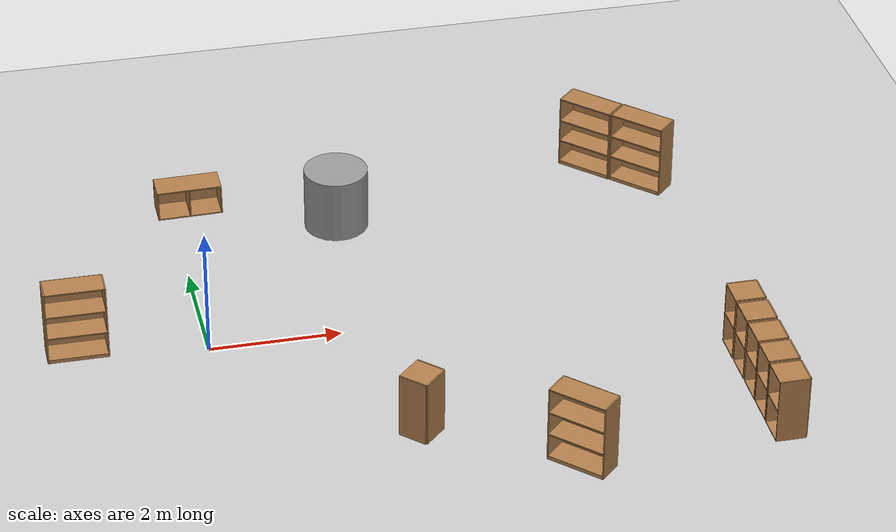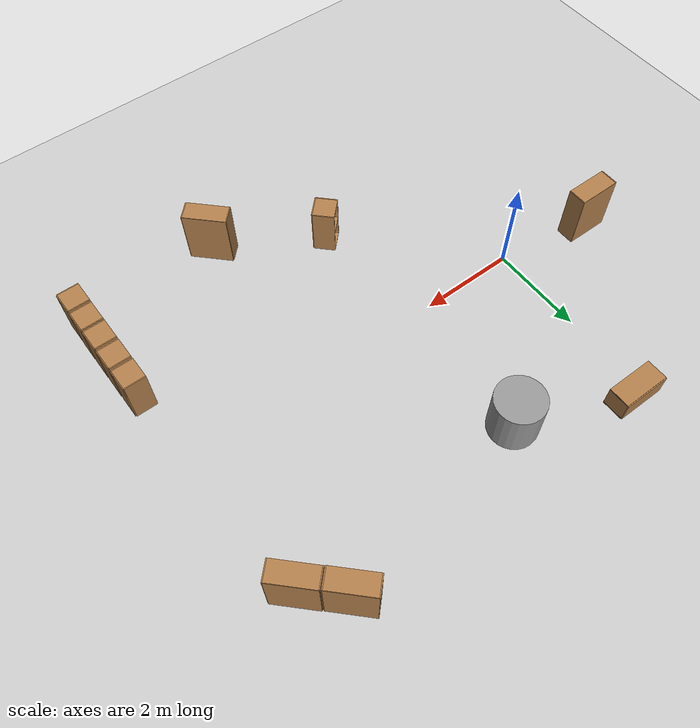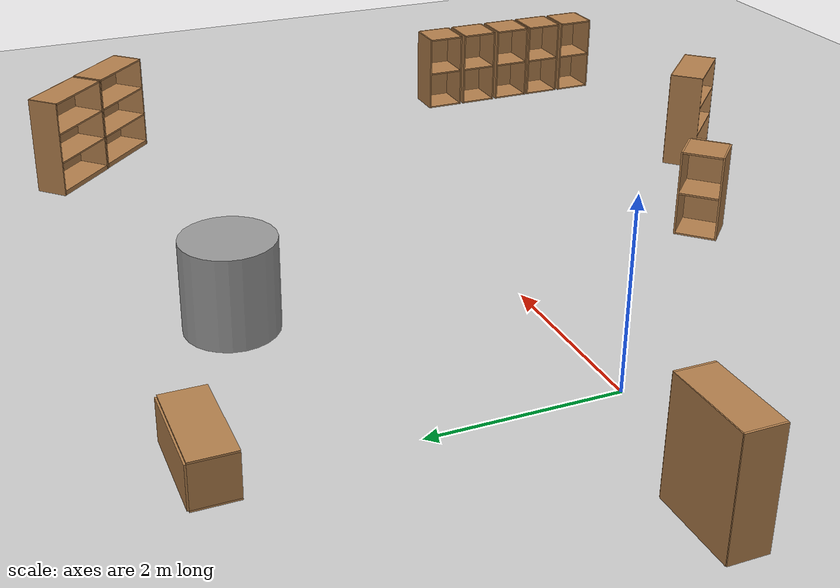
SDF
<sdf version="1.4">
 <world name="world_test_2">
  <model name="ground_plane">
   <static>1</static>
   <link name="link">
    <collision name="collision">
     <geometry><plane><normal>0 0 1</normal><size>100 100</size></plane></geometry>
     <surface><friction><ode><mu>100</mu><mu2>50</mu2></ode></friction></surface>
    </collision>
    <visual name="visual">
     <cast_shadows>0</cast_shadows>
     <geometry><plane><normal>0 0 1</normal><size>100 100</size></plane></geometry>
     <material>
      <script><uri>file://media/materials/scripts/gazebo.material</uri><name>Gazebo/Grey</name></script>
     </material>
    </visual>
    <velocity_decay><linear>0</linear><angular>0</angular></velocity_decay>
   </link>
  </model>
  <model name="unit_cylinder_1_0">
   <pose>2.50227 3 0.49912 -0 -0 -3e-06</pose>
   <link name="link">
    <inertial>
     <mass>1</mass>
     <inertia><ixx>1</ixx><ixy>0</ixy><ixz>0</ixz><iyy>1</iyy><iyz>0</iyz><izz>1</izz></inertia>
    </inertial>
    <collision name="collision">
     <geometry><cylinder><radius>0.5</radius><length>1</length></cylinder></geometry>
    </collision>
    <visual name="visual">
     <geometry><cylinder><radius>0.5</radius><length>1</length></cylinder></geometry>
     <material>
      <script><uri>file://media/materials/scripts/gazebo.material</uri><name>Gazebo/Grey</name></script>
     </material>
    </visual>
    <velocity_decay><linear>0</linear><angular>0</angular></velocity_decay>
   </link>
   <static>0</static>
  </model>
  <model name="cabinet">
   <static>1</static>
   <link name="cabinet_bottom_plate">
    <inertial>
     <pose>0 0 -1 0 -0 0</pose>
     <inertia><ixx>2.05</ixx><ixy>0</ixy><ixz>0</ixz><iyy>2.05</iyy><iyz>0</iyz><izz>2.05</izz></inertia>
     <mass>25</mass>
    </inertial>
    <collision name="cabinet_bottom_plate_geom">
     <pose>0 0 0.01 0 -0 0</pose>
     <geometry><box><size>0.45 0.45 0.02</size></box></geometry>
    </collision>
    <visual name="cabinet_bottom_plate_geom_visual">
     <pose>0 0 0.01 0 -0 0</pose>
     <geometry><box><size>0.45 0.45 0.02</size></box></geometry>
     <material>
      <script><uri>file://media/materials/scripts/gazebo.material</uri><name>Gazebo/Wood</name></script>
     </material>
    </visual>
    <collision name="cabinet_bottom_plate_geom_cabinet_back_plate">
     <pose>0.235 0 0.51 0 -0 0</pose>
     <geometry><box><size>0.02 0.45 1.02</size></box></geometry>
    </collision>
    <visual name="cabinet_bottom_plate_geom_cabinet_back_plate_visual">
     <pose>0.235 0 0.51 0 -0 0</pose>
     <geometry><box><size>0.02 0.45 1.02</size></box></geometry>
     <material>
      <script><uri>file://media/materials/scripts/gazebo.material</uri><name>Gazebo/Wood</name></script>
     </material>
    </visual>
    <collision name="cabinet_bottom_plate_geom_cabinet_left_plate">
     <pose>0 0.235 0.51 0 -0 0</pose>
     <geometry><box><size>0.45 0.02 1.02</size></box></geometry>
    </collision>
    <visual name="cabinet_bottom_plate_geom_cabinet_left_plate_visual">
     <pose>0 0.235 0.51 0 -0 0</pose>
     <geometry><box><size>0.45 0.02 1.02</size></box></geometry>
     <material>
      <script><uri>file://media/materials/scripts/gazebo.material</uri><name>Gazebo/Wood</name></script>
     </material>
    </visual>
    <collision name="cabinet_bottom_plate_geom_cabinet_middle_plate">
     <pose>0 0 0.51 0 -0 0</pose>
     <geometry><box><size>0.45 0.45 0.02</size></box></geometry>
    </collision>
    <visual name="cabinet_bottom_plate_geom_cabinet_middle_plate_visual">
     <pose>0 0 0.51 0 -0 0</pose>
     <geometry><box><size>0.45 0.45 0.02</size></box></geometry>
     <material>
      <script><uri>file://media/materials/scripts/gazebo.material</uri><name>Gazebo/Wood</name></script>
     </material>
    </visual>
    <collision name="cabinet_bottom_plate_geom_cabinet_right_plate">
     <pose>0 -0.235 0.51 0 -0 0</pose>
     <geometry><box><size>0.45 0.02 1.02</size></box></geometry>
    </collision>
    <visual name="cabinet_bottom_plate_geom_cabinet_right_plate_visual">
     <pose>0 -0.235 0.51 0 -0 0</pose>
     <geometry><box><size>0.45 0.02 1.02</size></box></geometry>
     <material>
      <script><uri>file://media/materials/scripts/gazebo.material</uri><name>Gazebo/Wood</name></script>
     </material>
    </visual>
    <collision name="cabinet_bottom_plate_geom_cabinet_top_plate">
     <pose>0 0 1.01 0 -0 0</pose>
     <geometry><box><size>0.45 0.45 0.02</size></box></geometry>
    </collision>
    <visual name="cabinet_bottom_plate_geom_cabinet_top_plate_visual">
     <pose>0 0 1.01 0 -0 0</pose>
     <geometry><box><size>0.45 0.45 0.02</size></box></geometry>
     <material>
      <script><uri>file://media/materials/scripts/gazebo.material</uri><name>Gazebo/Wood</name></script>
     </material>
    </visual>
    <velocity_decay><linear>0</linear><angular>0</angular></velocity_decay>
   </link>
   <pose>2.64485 -2.64669 0 0 0 -0.785402</pose>
  </model>
  <model name="cabinet_1">
   <static>1</static>
   <link name="cabinet_bottom_plate">
    <inertial>
     <pose>0 0 -1 0 -0 0</pose>
     <inertia><ixx>2.05</ixx><ixy>0</ixy><ixz>0</ixz><iyy>2.05</iyy><iyz>0</iyz><izz>2.05</izz></inertia>
     <mass>25</mass>
    </inertial>
    <collision name="cabinet_bottom_plate_geom">
     <pose>0 0 0.01 0 -0 0</pose>
     <geometry><box><size>0.45 0.45 0.02</size></box></geometry>
    </collision>
    <visual name="cabinet_bottom_plate_geom_visual">
     <pose>0 0 0.01 0 -0 0</pose>
     <geometry><box><size>0.45 0.45 0.02</size></box></geometry>
     <material>
      <script><uri>file://media/materials/scripts/gazebo.material</uri><name>Gazebo/Wood</name></script>
     </material>
    </visual>
    <collision name="cabinet_bottom_plate_geom_cabinet_back_plate">
     <pose>0.235 0 0.51 0 -0 0</pose>
     <geometry><box><size>0.02 0.45 1.02</size></box></geometry>
    </collision>
    <visual name="cabinet_bottom_plate_geom_cabinet_back_plate_visual">
     <pose>0.235 0 0.51 0 -0 0</pose>
     <geometry><box><size>0.02 0.45 1.02</size></box></geometry>
     <material>
      <script><uri>file://media/materials/scripts/gazebo.material</uri><name>Gazebo/Wood</name></script>
     </material>
    </visual>
    <collision name="cabinet_bottom_plate_geom_cabinet_left_plate">
     <pose>0 0.235 0.51 0 -0 0</pose>
     <geometry><box><size>0.45 0.02 1.02</size></box></geometry>
    </collision>
    <visual name="cabinet_bottom_plate_geom_cabinet_left_plate_visual">
     <pose>0 0.235 0.51 0 -0 0</pose>
     <geometry><box><size>0.45 0.02 1.02</size></box></geometry>
     <material>
      <script><uri>file://media/materials/scripts/gazebo.material</uri><name>Gazebo/Wood</name></script>
     </material>
    </visual>
    <collision name="cabinet_bottom_plate_geom_cabinet_middle_plate">
     <pose>0 0 0.51 0 -0 0</pose>
     <geometry><box><size>0.45 0.45 0.02</size></box></geometry>
    </collision>
    <visual name="cabinet_bottom_plate_geom_cabinet_middle_plate_visual">
     <pose>0 0 0.51 0 -0 0</pose>
     <geometry><box><size>0.45 0.45 0.02</size></box></geometry>
     <material>
      <script><uri>file://media/materials/scripts/gazebo.material</uri><name>Gazebo/Wood</name></script>
     </material>
    </visual>
    <collision name="cabinet_bottom_plate_geom_cabinet_right_plate">
     <pose>0 -0.235 0.51 0 -0 0</pose>
     <geometry><box><size>0.45 0.02 1.02</size></box></geometry>
    </collision>
    <visual name="cabinet_bottom_plate_geom_cabinet_right_plate_visual">
     <pose>0 -0.235 0.51 0 -0 0</pose>
     <geometry><box><size>0.45 0.02 1.02</size></box></geometry>
     <material>
      <script><uri>file://media/materials/scripts/gazebo.material</uri><name>Gazebo/Wood</name></script>
     </material>
    </visual>
    <collision name="cabinet_bottom_plate_geom_cabinet_top_plate">
     <pose>0 0 1.01 0 -0 0</pose>
     <geometry><box><size>0.45 0.45 0.02</size></box></geometry>
    </collision>
    <visual name="cabinet_bottom_plate_geom_cabinet_top_plate_visual">
     <pose>0 0 1.01 0 -0 0</pose>
     <geometry><box><size>0.45 0.45 0.02</size></box></geometry>
     <material>
      <script><uri>file://media/materials/scripts/gazebo.material</uri><name>Gazebo/Wood</name></script>
     </material>
    </visual>
    <velocity_decay><linear>0</linear><angular>0</angular></velocity_decay>
   </link>
   <pose>7.73323 -2.6778 0 0 -0 0</pose>
  </model>
  <model name="cabinet_2">
   <static>1</static>
   <link name="cabinet_bottom_plate">
    <inertial>
     <pose>0 0 -1 0 -0 0</pose>
     <inertia><ixx>2.05</ixx><ixy>0</ixy><ixz>0</ixz><iyy>2.05</iyy><iyz>0</iyz><izz>2.05</izz></inertia>
     <mass>25</mass>
    </inertial>
    <collision name="cabinet_bottom_plate_geom">
     <pose>0 0 0.01 0 -0 0</pose>
     <geometry><box><size>0.45 0.45 0.02</size></box></geometry>
    </collision>
    <visual name="cabinet_bottom_plate_geom_visual">
     <pose>0 0 0.01 0 -0 0</pose>
     <geometry><box><size>0.45 0.45 0.02</size></box></geometry>
     <material>
      <script><uri>file://media/materials/scripts/gazebo.material</uri><name>Gazebo/Wood</name></script>
     </material>
    </visual>
    <collision name="cabinet_bottom_plate_geom_cabinet_back_plate">
     <pose>0.235 0 0.51 0 -0 0</pose>
     <geometry><box><size>0.02 0.45 1.02</size></box></geometry>
    </collision>
    <visual name="cabinet_bottom_plate_geom_cabinet_back_plate_visual">
     <pose>0.235 0 0.51 0 -0 0</pose>
     <geometry><box><size>0.02 0.45 1.02</size></box></geometry>
     <material>
      <script><uri>file://media/materials/scripts/gazebo.material</uri><name>Gazebo/Wood</name></script>
     </material>
    </visual>
    <collision name="cabinet_bottom_plate_geom_cabinet_left_plate">
     <pose>0 0.235 0.51 0 -0 0</pose>
     <geometry><box><size>0.45 0.02 1.02</size></box></geometry>
    </collision>
    <visual name="cabinet_bottom_plate_geom_cabinet_left_plate_visual">
     <pose>0 0.235 0.51 0 -0 0</pose>
     <geometry><box><size>0.45 0.02 1.02</size></box></geometry>
     <material>
      <script><uri>file://media/materials/scripts/gazebo.material</uri><name>Gazebo/Wood</name></script>
     </material>
    </visual>
    <collision name="cabinet_bottom_plate_geom_cabinet_middle_plate">
     <pose>0 0 0.51 0 -0 0</pose>
     <geometry><box><size>0.45 0.45 0.02</size></box></geometry>
    </collision>
    <visual name="cabinet_bottom_plate_geom_cabinet_middle_plate_visual">
     <pose>0 0 0.51 0 -0 0</pose>
     <geometry><box><size>0.45 0.45 0.02</size></box></geometry>
     <material>
      <script><uri>file://media/materials/scripts/gazebo.material</uri><name>Gazebo/Wood</name></script>
     </material>
    </visual>
    <collision name="cabinet_bottom_plate_geom_cabinet_right_plate">
     <pose>0 -0.235 0.51 0 -0 0</pose>
     <geometry><box><size>0.45 0.02 1.02</size></box></geometry>
    </collision>
    <visual name="cabinet_bottom_plate_geom_cabinet_right_plate_visual">
     <pose>0 -0.235 0.51 0 -0 0</pose>
     <geometry><box><size>0.45 0.02 1.02</size></box></geometry>
     <material>
      <script><uri>file://media/materials/scripts/gazebo.material</uri><name>Gazebo/Wood</name></script>
     </material>
    </visual>
    <collision name="cabinet_bottom_plate_geom_cabinet_top_plate">
     <pose>0 0 1.01 0 -0 0</pose>
     <geometry><box><size>0.45 0.45 0.02</size></box></geometry>
    </collision>
    <visual name="cabinet_bottom_plate_geom_cabinet_top_plate_visual">
     <pose>0 0 1.01 0 -0 0</pose>
     <geometry><box><size>0.45 0.45 0.02</size></box></geometry>
     <material>
      <script><uri>file://media/materials/scripts/gazebo.material</uri><name>Gazebo/Wood</name></script>
     </material>
    </visual>
    <velocity_decay><linear>0</linear><angular>0</angular></velocity_decay>
   </link>
   <pose>7.73111 -2.14886 0 0 -0 0</pose>
  </model>
  <model name="cabinet_3">
   <static>1</static>
   <link name="cabinet_bottom_plate">
    <inertial>
     <pose>0 0 -1 0 -0 0</pose>
     <inertia><ixx>2.05</ixx><ixy>0</ixy><ixz>0</ixz><iyy>2.05</iyy><iyz>0</iyz><izz>2.05</izz></inertia>
     <mass>25</mass>
    </inertial>
    <collision name="cabinet_bottom_plate_geom">
     <pose>0 0 0.01 0 -0 0</pose>
     <geometry><box><size>0.45 0.45 0.02</size></box></geometry>
    </collision>
    <visual name="cabinet_bottom_plate_geom_visual">
     <pose>0 0 0.01 0 -0 0</pose>
     <geometry><box><size>0.45 0.45 0.02</size></box></geometry>
     <material>
      <script><uri>file://media/materials/scripts/gazebo.material</uri><name>Gazebo/Wood</name></script>
     </material>
    </visual>
    <collision name="cabinet_bottom_plate_geom_cabinet_back_plate">
     <pose>0.235 0 0.51 0 -0 0</pose>
     <geometry><box><size>0.02 0.45 1.02</size></box></geometry>
    </collision>
    <visual name="cabinet_bottom_plate_geom_cabinet_back_plate_visual">
     <pose>0.235 0 0.51 0 -0 0</pose>
     <geometry><box><size>0.02 0.45 1.02</size></box></geometry>
     <material>
      <script><uri>file://media/materials/scripts/gazebo.material</uri><name>Gazebo/Wood</name></script>
     </material>
    </visual>
    <collision name="cabinet_bottom_plate_geom_cabinet_left_plate">
     <pose>0 0.235 0.51 0 -0 0</pose>
     <geometry><box><size>0.45 0.02 1.02</size></box></geometry>
    </collision>
    <visual name="cabinet_bottom_plate_geom_cabinet_left_plate_visual">
     <pose>0 0.235 0.51 0 -0 0</pose>
     <geometry><box><size>0.45 0.02 1.02</size></box></geometry>
     <material>
      <script><uri>file://media/materials/scripts/gazebo.material</uri><name>Gazebo/Wood</name></script>
     </material>
    </visual>
    <collision name="cabinet_bottom_plate_geom_cabinet_middle_plate">
     <pose>0 0 0.51 0 -0 0</pose>
     <geometry><box><size>0.45 0.45 0.02</size></box></geometry>
    </collision>
    <visual name="cabinet_bottom_plate_geom_cabinet_middle_plate_visual">
     <pose>0 0 0.51 0 -0 0</pose>
     <geometry><box><size>0.45 0.45 0.02</size></box></geometry>
     <material>
      <script><uri>file://media/materials/scripts/gazebo.material</uri><name>Gazebo/Wood</name></script>
     </material>
    </visual>
    <collision name="cabinet_bottom_plate_geom_cabinet_right_plate">
     <pose>0 -0.235 0.51 0 -0 0</pose>
     <geometry><box><size>0.45 0.02 1.02</size></box></geometry>
    </collision>
    <visual name="cabinet_bottom_plate_geom_cabinet_right_plate_visual">
     <pose>0 -0.235 0.51 0 -0 0</pose>
     <geometry><box><size>0.45 0.02 1.02</size></box></geometry>
     <material>
      <script><uri>file://media/materials/scripts/gazebo.material</uri><name>Gazebo/Wood</name></script>
     </material>
    </visual>
    <collision name="cabinet_bottom_plate_geom_cabinet_top_plate">
     <pose>0 0 1.01 0 -0 0</pose>
     <geometry><box><size>0.45 0.45 0.02</size></box></geometry>
    </collision>
    <visual name="cabinet_bottom_plate_geom_cabinet_top_plate_visual">
     <pose>0 0 1.01 0 -0 0</pose>
     <geometry><box><size>0.45 0.45 0.02</size></box></geometry>
     <material>
      <script><uri>file://media/materials/scripts/gazebo.material</uri><name>Gazebo/Wood</name></script>
     </material>
    </visual>
    <velocity_decay><linear>0</linear><angular>0</angular></velocity_decay>
   </link>
   <pose>7.72799 -1.62137 0 0 -0 0</pose>
  </model>
  <model name="cabinet_5">
   <static>1</static>
   <link name="cabinet_bottom_plate">
    <inertial>
     <pose>0 0 -1 0 -0 0</pose>
     <inertia><ixx>2.05</ixx><ixy>0</ixy><ixz>0</ixz><iyy>2.05</iyy><iyz>0</iyz><izz>2.05</izz></inertia>
     <mass>25</mass>
    </inertial>
    <collision name="cabinet_bottom_plate_geom">
     <pose>0 0 0.01 0 -0 0</pose>
     <geometry><box><size>0.45 0.45 0.02</size></box></geometry>
    </collision>
    <visual name="cabinet_bottom_plate_geom_visual">
     <pose>0 0 0.01 0 -0 0</pose>
     <geometry><box><size>0.45 0.45 0.02</size></box></geometry>
     <material>
      <script><uri>file://media/materials/scripts/gazebo.material</uri><name>Gazebo/Wood</name></script>
     </material>
    </visual>
    <collision name="cabinet_bottom_plate_geom_cabinet_back_plate">
     <pose>0.235 0 0.51 0 -0 0</pose>
     <geometry><box><size>0.02 0.45 1.02</size></box></geometry>
    </collision>
    <visual name="cabinet_bottom_plate_geom_cabinet_back_plate_visual">
     <pose>0.235 0 0.51 0 -0 0</pose>
     <geometry><box><size>0.02 0.45 1.02</size></box></geometry>
     <material>
      <script><uri>file://media/materials/scripts/gazebo.material</uri><name>Gazebo/Wood</name></script>
     </material>
    </visual>
    <collision name="cabinet_bottom_plate_geom_cabinet_left_plate">
     <pose>0 0.235 0.51 0 -0 0</pose>
     <geometry><box><size>0.45 0.02 1.02</size></box></geometry>
    </collision>
    <visual name="cabinet_bottom_plate_geom_cabinet_left_plate_visual">
     <pose>0 0.235 0.51 0 -0 0</pose>
     <geometry><box><size>0.45 0.02 1.02</size></box></geometry>
     <material>
      <script><uri>file://media/materials/scripts/gazebo.material</uri><name>Gazebo/Wood</name></script>
     </material>
    </visual>
    <collision name="cabinet_bottom_plate_geom_cabinet_middle_plate">
     <pose>0 0 0.51 0 -0 0</pose>
     <geometry><box><size>0.45 0.45 0.02</size></box></geometry>
    </collision>
    <visual name="cabinet_bottom_plate_geom_cabinet_middle_plate_visual">
     <pose>0 0 0.51 0 -0 0</pose>
     <geometry><box><size>0.45 0.45 0.02</size></box></geometry>
     <material>
      <script><uri>file://media/materials/scripts/gazebo.material</uri><name>Gazebo/Wood</name></script>
     </material>
    </visual>
    <collision name="cabinet_bottom_plate_geom_cabinet_right_plate">
     <pose>0 -0.235 0.51 0 -0 0</pose>
     <geometry><box><size>0.45 0.02 1.02</size></box></geometry>
    </collision>
    <visual name="cabinet_bottom_plate_geom_cabinet_right_plate_visual">
     <pose>0 -0.235 0.51 0 -0 0</pose>
     <geometry><box><size>0.45 0.02 1.02</size></box></geometry>
     <material>
      <script><uri>file://media/materials/scripts/gazebo.material</uri><name>Gazebo/Wood</name></script>
     </material>
    </visual>
    <collision name="cabinet_bottom_plate_geom_cabinet_top_plate">
     <pose>0 0 1.01 0 -0 0</pose>
     <geometry><box><size>0.45 0.45 0.02</size></box></geometry>
    </collision>
    <visual name="cabinet_bottom_plate_geom_cabinet_top_plate_visual">
     <pose>0 0 1.01 0 -0 0</pose>
     <geometry><box><size>0.45 0.45 0.02</size></box></geometry>
     <material>
      <script><uri>file://media/materials/scripts/gazebo.material</uri><name>Gazebo/Wood</name></script>
     </material>
    </visual>
    <velocity_decay><linear>0</linear><angular>0</angular></velocity_decay>
   </link>
   <pose>7.73486 -3.19267 0 0 -0 0</pose>
  </model>
  <model name="cabinet_6">
   <static>1</static>
   <link name="cabinet_bottom_plate">
    <inertial>
     <pose>0 0 -1 0 -0 0</pose>
     <inertia><ixx>2.05</ixx><ixy>0</ixy><ixz>0</ixz><iyy>2.05</iyy><iyz>0</iyz><izz>2.05</izz></inertia>
     <mass>25</mass>
    </inertial>
    <collision name="cabinet_bottom_plate_geom">
     <pose>0 0 0.01 0 -0 0</pose>
     <geometry><box><size>0.45 0.45 0.02</size></box></geometry>
    </collision>
    <visual name="cabinet_bottom_plate_geom_visual">
     <pose>0 0 0.01 0 -0 0</pose>
     <geometry><box><size>0.45 0.45 0.02</size></box></geometry>
     <material>
      <script><uri>file://media/materials/scripts/gazebo.material</uri><name>Gazebo/Wood</name></script>
     </material>
    </visual>
    <collision name="cabinet_bottom_plate_geom_cabinet_back_plate">
     <pose>0.235 0 0.51 0 -0 0</pose>
     <geometry><box><size>0.02 0.45 1.02</size></box></geometry>
    </collision>
    <visual name="cabinet_bottom_plate_geom_cabinet_back_plate_visual">
     <pose>0.235 0 0.51 0 -0 0</pose>
     <geometry><box><size>0.02 0.45 1.02</size></box></geometry>
     <material>
      <script><uri>file://media/materials/scripts/gazebo.material</uri><name>Gazebo/Wood</name></script>
     </material>
    </visual>
    <collision name="cabinet_bottom_plate_geom_cabinet_left_plate">
     <pose>0 0.235 0.51 0 -0 0</pose>
     <geometry><box><size>0.45 0.02 1.02</size></box></geometry>
    </collision>
    <visual name="cabinet_bottom_plate_geom_cabinet_left_plate_visual">
     <pose>0 0.235 0.51 0 -0 0</pose>
     <geometry><box><size>0.45 0.02 1.02</size></box></geometry>
     <material>
      <script><uri>file://media/materials/scripts/gazebo.material</uri><name>Gazebo/Wood</name></script>
     </material>
    </visual>
    <collision name="cabinet_bottom_plate_geom_cabinet_middle_plate">
     <pose>0 0 0.51 0 -0 0</pose>
     <geometry><box><size>0.45 0.45 0.02</size></box></geometry>
    </collision>
    <visual name="cabinet_bottom_plate_geom_cabinet_middle_plate_visual">
     <pose>0 0 0.51 0 -0 0</pose>
     <geometry><box><size>0.45 0.45 0.02</size></box></geometry>
     <material>
      <script><uri>file://media/materials/scripts/gazebo.material</uri><name>Gazebo/Wood</name></script>
     </material>
    </visual>
    <collision name="cabinet_bottom_plate_geom_cabinet_right_plate">
     <pose>0 -0.235 0.51 0 -0 0</pose>
     <geometry><box><size>0.45 0.02 1.02</size></box></geometry>
    </collision>
    <visual name="cabinet_bottom_plate_geom_cabinet_right_plate_visual">
     <pose>0 -0.235 0.51 0 -0 0</pose>
     <geometry><box><size>0.45 0.02 1.02</size></box></geometry>
     <material>
      <script><uri>file://media/materials/scripts/gazebo.material</uri><name>Gazebo/Wood</name></script>
     </material>
    </visual>
    <collision name="cabinet_bottom_plate_geom_cabinet_top_plate">
     <pose>0 0 1.01 0 -0 0</pose>
     <geometry><box><size>0.45 0.45 0.02</size></box></geometry>
    </collision>
    <visual name="cabinet_bottom_plate_geom_cabinet_top_plate_visual">
     <pose>0 0 1.01 0 -0 0</pose>
     <geometry><box><size>0.45 0.45 0.02</size></box></geometry>
     <material>
      <script><uri>file://media/materials/scripts/gazebo.material</uri><name>Gazebo/Wood</name></script>
     </material>
    </visual>
    <velocity_decay><linear>0</linear><angular>0</angular></velocity_decay>
   </link>
   <pose>7.73099 -3.71772 0 0 -0 0</pose>
  </model>
  <model name="cabinet_7">
   <static>1</static>
   <link name="cabinet_bottom_plate">
    <inertial>
     <pose>0 0 -1 0 -0 0</pose>
     <inertia><ixx>2.05</ixx><ixy>0</ixy><ixz>0</ixz><iyy>2.05</iyy><iyz>0</iyz><izz>2.05</izz></inertia>
     <mass>25</mass>
    </inertial>
    <collision name="cabinet_bottom_plate_geom">
     <pose>0 0 0.01 0 -0 0</pose>
     <geometry><box><size>0.45 0.45 0.02</size></box></geometry>
    </collision>
    <visual name="cabinet_bottom_plate_geom_visual">
     <pose>0 0 0.01 0 -0 0</pose>
     <geometry><box><size>0.45 0.45 0.02</size></box></geometry>
     <material>
      <script><uri>file://media/materials/scripts/gazebo.material</uri><name>Gazebo/Wood</name></script>
     </material>
    </visual>
    <collision name="cabinet_bottom_plate_geom_cabinet_back_plate">
     <pose>0.235 0 0.51 0 -0 0</pose>
     <geometry><box><size>0.02 0.45 1.02</size></box></geometry>
    </collision>
    <visual name="cabinet_bottom_plate_geom_cabinet_back_plate_visual">
     <pose>0.235 0 0.51 0 -0 0</pose>
     <geometry><box><size>0.02 0.45 1.02</size></box></geometry>
     <material>
      <script><uri>file://media/materials/scripts/gazebo.material</uri><name>Gazebo/Wood</name></script>
     </material>
    </visual>
    <collision name="cabinet_bottom_plate_geom_cabinet_left_plate">
     <pose>0 0.235 0.51 0 -0 0</pose>
     <geometry><box><size>0.45 0.02 1.02</size></box></geometry>
    </collision>
    <visual name="cabinet_bottom_plate_geom_cabinet_left_plate_visual">
     <pose>0 0.235 0.51 0 -0 0</pose>
     <geometry><box><size>0.45 0.02 1.02</size></box></geometry>
     <material>
      <script><uri>file://media/materials/scripts/gazebo.material</uri><name>Gazebo/Wood</name></script>
     </material>
    </visual>
    <collision name="cabinet_bottom_plate_geom_cabinet_middle_plate">
     <pose>0 0 0.51 0 -0 0</pose>
     <geometry><box><size>0.45 0.45 0.02</size></box></geometry>
    </collision>
    <visual name="cabinet_bottom_plate_geom_cabinet_middle_plate_visual">
     <pose>0 0 0.51 0 -0 0</pose>
     <geometry><box><size>0.45 0.45 0.02</size></box></geometry>
     <material>
      <script><uri>file://media/materials/scripts/gazebo.material</uri><name>Gazebo/Wood</name></script>
     </material>
    </visual>
    <collision name="cabinet_bottom_plate_geom_cabinet_right_plate">
     <pose>0 -0.235 0.51 0 -0 0</pose>
     <geometry><box><size>0.45 0.02 1.02</size></box></geometry>
    </collision>
    <visual name="cabinet_bottom_plate_geom_cabinet_right_plate_visual">
     <pose>0 -0.235 0.51 0 -0 0</pose>
     <geometry><box><size>0.45 0.02 1.02</size></box></geometry>
     <material>
      <script><uri>file://media/materials/scripts/gazebo.material</uri><name>Gazebo/Wood</name></script>
     </material>
    </visual>
    <collision name="cabinet_bottom_plate_geom_cabinet_top_plate">
     <pose>0 0 1.01 0 -0 0</pose>
     <geometry><box><size>0.45 0.45 0.02</size></box></geometry>
    </collision>
    <visual name="cabinet_bottom_plate_geom_cabinet_top_plate_visual">
     <pose>0 0 1.01 0 -0 0</pose>
     <geometry><box><size>0.45 0.45 0.02</size></box></geometry>
     <material>
      <script><uri>file://media/materials/scripts/gazebo.material</uri><name>Gazebo/Wood</name></script>
     </material>
    </visual>
    <velocity_decay><linear>0</linear><angular>0</angular></velocity_decay>
   </link>
   <pose>-0.21946 3.90523 0.24 1.55682 -0 1.5708</pose>
  </model>
  <model name="bookshelf_7">
   <static>1</static>
   <link name="link">
    <inertial><mass>1</mass></inertial>
    <collision name="back">
     <pose>0 0.005 0.6 0 -0 0</pose>
     <geometry><box><size>0.9 0.01 1.2</size></box></geometry>
    </collision>
    <visual name="visual1">
     <pose>0 0.005 0.6 0 -0 0</pose>
     <geometry><box><size>0.9 0.01 1.2</size></box></geometry>
     <material>
      <script><uri>file://media/materials/scripts/gazebo.material</uri><name>Gazebo/Wood</name></script>
     </material>
    </visual>
    <collision name="left_side">
     <pose>0.45 -0.195 0.6 0 -0 0</pose>
     <geometry><box><size>0.02 0.4 1.2</size></box></geometry>
    </collision>
    <visual name="visual2">
     <pose>0.45 -0.195 0.6 0 -0 0</pose>
     <geometry><box><size>0.02 0.4 1.2</size></box></geometry>
     <material>
      <script><uri>file://media/materials/scripts/gazebo.material</uri><name>Gazebo/Wood</name></script>
     </material>
    </visual>
    <collision name="right_side">
     <pose>-0.45 -0.195 0.6 0 -0 0</pose>
     <geometry><box><size>0.02 0.4 1.2</size></box></geometry>
    </collision>
    <visual name="visual3">
     <pose>-0.45 -0.195 0.6 0 -0 0</pose>
     <geometry><box><size>0.02 0.4 1.2</size></box></geometry>
     <material>
      <script><uri>file://media/materials/scripts/gazebo.material</uri><name>Gazebo/Wood</name></script>
     </material>
    </visual>
    <collision name="bottom">
     <pose>0 -0.195 0.03 0 -0 0</pose>
     <geometry><box><size>0.88 0.4 0.06</size></box></geometry>
    </collision>
    <visual name="visual4">
     <pose>0 -0.195 0.03 0 -0 0</pose>
     <geometry><box><size>0.88 0.4 0.06</size></box></geometry>
     <material>
      <script><uri>file://media/materials/scripts/gazebo.material</uri><name>Gazebo/Wood</name></script>
     </material>
    </visual>
    <collision name="top">
     <pose>0 -0.195 1.19 0 -0 0</pose>
     <geometry><box><size>0.88 0.4 0.02</size></box></geometry>
    </collision>
    <visual name="visual5">
     <pose>0 -0.195 1.19 0 -0 0</pose>
     <geometry><box><size>0.88 0.4 0.02</size></box></geometry>
     <material>
      <script><uri>file://media/materials/scripts/gazebo.material</uri><name>Gazebo/Wood</name></script>
     </material>
    </visual>
    <collision name="low_shelf">
     <pose>0 -0.195 0.43 0 -0 0</pose>
     <geometry><box><size>0.88 0.4 0.02</size></box></geometry>
    </collision>
    <visual name="visual6">
     <pose>0 -0.195 0.43 0 -0 0</pose>
     <geometry><box><size>0.88 0.4 0.02</size></box></geometry>
     <material>
      <script><uri>file://media/materials/scripts/gazebo.material</uri><name>Gazebo/Wood</name></script>
     </material>
    </visual>
    <collision name="high_shelf">
     <pose>0 -0.195 0.8 0 -0 0</pose>
     <geometry><box><size>0.88 0.4 0.02</size></box></geometry>
    </collision>
    <visual name="visual7">
     <pose>0 -0.195 0.8 0 -0 0</pose>
     <geometry><box><size>0.88 0.4 0.02</size></box></geometry>
     <material>
      <script><uri>file://media/materials/scripts/gazebo.material</uri><name>Gazebo/Wood</name></script>
     </material>
    </visual>
    <velocity_decay><linear>0</linear><angular>0</angular></velocity_decay>
   </link>
   <pose>-1.91589 0.526103 0 0 -0 0</pose>
  </model>
  <model name="bookshelf_8">
   <static>1</static>
   <link name="link">
    <inertial><mass>1</mass></inertial>
    <collision name="back">
     <pose>0 0.005 0.6 0 -0 0</pose>
     <geometry><box><size>0.9 0.01 1.2</size></box></geometry>
    </collision>
    <visual name="visual1">
     <pose>0 0.005 0.6 0 -0 0</pose>
     <geometry><box><size>0.9 0.01 1.2</size></box></geometry>
     <material>
      <script><uri>file://media/materials/scripts/gazebo.material</uri><name>Gazebo/Wood</name></script>
     </material>
    </visual>
    <collision name="left_side">
     <pose>0.45 -0.195 0.6 0 -0 0</pose>
     <geometry><box><size>0.02 0.4 1.2</size></box></geometry>
    </collision>
    <visual name="visual2">
     <pose>0.45 -0.195 0.6 0 -0 0</pose>
     <geometry><box><size>0.02 0.4 1.2</size></box></geometry>
     <material>
      <script><uri>file://media/materials/scripts/gazebo.material</uri><name>Gazebo/Wood</name></script>
     </material>
    </visual>
    <collision name="right_side">
     <pose>-0.45 -0.195 0.6 0 -0 0</pose>
     <geometry><box><size>0.02 0.4 1.2</size></box></geometry>
    </collision>
    <visual name="visual3">
     <pose>-0.45 -0.195 0.6 0 -0 0</pose>
     <geometry><box><size>0.02 0.4 1.2</size></box></geometry>
     <material>
      <script><uri>file://media/materials/scripts/gazebo.material</uri><name>Gazebo/Wood</name></script>
     </material>
    </visual>
    <collision name="bottom">
     <pose>0 -0.195 0.03 0 -0 0</pose>
     <geometry><box><size>0.88 0.4 0.06</size></box></geometry>
    </collision>
    <visual name="visual4">
     <pose>0 -0.195 0.03 0 -0 0</pose>
     <geometry><box><size>0.88 0.4 0.06</size></box></geometry>
     <material>
      <script><uri>file://media/materials/scripts/gazebo.material</uri><name>Gazebo/Wood</name></script>
     </material>
    </visual>
    <collision name="top">
     <pose>0 -0.195 1.19 0 -0 0</pose>
     <geometry><box><size>0.88 0.4 0.02</size></box></geometry>
    </collision>
    <visual name="visual5">
     <pose>0 -0.195 1.19 0 -0 0</pose>
     <geometry><box><size>0.88 0.4 0.02</size></box></geometry>
     <material>
      <script><uri>file://media/materials/scripts/gazebo.material</uri><name>Gazebo/Wood</name></script>
     </material>
    </visual>
    <collision name="low_shelf">
     <pose>0 -0.195 0.43 0 -0 0</pose>
     <geometry><box><size>0.88 0.4 0.02</size></box></geometry>
    </collision>
    <visual name="visual6">
     <pose>0 -0.195 0.43 0 -0 0</pose>
     <geometry><box><size>0.88 0.4 0.02</size></box></geometry>
     <material>
      <script><uri>file://media/materials/scripts/gazebo.material</uri><name>Gazebo/Wood</name></script>
     </material>
    </visual>
    <collision name="high_shelf">
     <pose>0 -0.195 0.8 0 -0 0</pose>
     <geometry><box><size>0.88 0.4 0.02</size></box></geometry>
    </collision>
    <visual name="visual7">
     <pose>0 -0.195 0.8 0 -0 0</pose>
     <geometry><box><size>0.88 0.4 0.02</size></box></geometry>
     <material>
      <script><uri>file://media/materials/scripts/gazebo.material</uri><name>Gazebo/Wood</name></script>
     </material>
    </visual>
    <velocity_decay><linear>0</linear><angular>0</angular></velocity_decay>
   </link>
   <pose>4.83188 -3.70641 0 0 0 -0.785403</pose>
  </model>
  <model name="bookshelf_9">
   <static>1</static>
   <link name="link">
    <inertial><mass>1</mass></inertial>
    <collision name="back">
     <pose>0 0.005 0.6 0 -0 0</pose>
     <geometry><box><size>0.9 0.01 1.2</size></box></geometry>
    </collision>
    <visual name="visual1">
     <pose>0 0.005 0.6 0 -0 0</pose>
     <geometry><box><size>0.9 0.01 1.2</size></box></geometry>
     <material>
      <script><uri>file://media/materials/scripts/gazebo.material</uri><name>Gazebo/Wood</name></script>
     </material>
    </visual>
    <collision name="left_side">
     <pose>0.45 -0.195 0.6 0 -0 0</pose>
     <geometry><box><size>0.02 0.4 1.2</size></box></geometry>
    </collision>
    <visual name="visual2">
     <pose>0.45 -0.195 0.6 0 -0 0</pose>
     <geometry><box><size>0.02 0.4 1.2</size></box></geometry>
     <material>
      <script><uri>file://media/materials/scripts/gazebo.material</uri><name>Gazebo/Wood</name></script>
     </material>
    </visual>
    <collision name="right_side">
     <pose>-0.45 -0.195 0.6 0 -0 0</pose>
     <geometry><box><size>0.02 0.4 1.2</size></box></geometry>
    </collision>
    <visual name="visual3">
     <pose>-0.45 -0.195 0.6 0 -0 0</pose>
     <geometry><box><size>0.02 0.4 1.2</size></box></geometry>
     <material>
      <script><uri>file://media/materials/scripts/gazebo.material</uri><name>Gazebo/Wood</name></script>
     </material>
    </visual>
    <collision name="bottom">
     <pose>0 -0.195 0.03 0 -0 0</pose>
     <geometry><box><size>0.88 0.4 0.06</size></box></geometry>
    </collision>
    <visual name="visual4">
     <pose>0 -0.195 0.03 0 -0 0</pose>
     <geometry><box><size>0.88 0.4 0.06</size></box></geometry>
     <material>
      <script><uri>file://media/materials/scripts/gazebo.material</uri><name>Gazebo/Wood</name></script>
     </material>
    </visual>
    <collision name="top">
     <pose>0 -0.195 1.19 0 -0 0</pose>
     <geometry><box><size>0.88 0.4 0.02</size></box></geometry>
    </collision>
    <visual name="visual5">
     <pose>0 -0.195 1.19 0 -0 0</pose>
     <geometry><box><size>0.88 0.4 0.02</size></box></geometry>
     <material>
      <script><uri>file://media/materials/scripts/gazebo.material</uri><name>Gazebo/Wood</name></script>
     </material>
    </visual>
    <collision name="low_shelf">
     <pose>0 -0.195 0.43 0 -0 0</pose>
     <geometry><box><size>0.88 0.4 0.02</size></box></geometry>
    </collision>
    <visual name="visual6">
     <pose>0 -0.195 0.43 0 -0 0</pose>
     <geometry><box><size>0.88 0.4 0.02</size></box></geometry>
     <material>
      <script><uri>file://media/materials/scripts/gazebo.material</uri><name>Gazebo/Wood</name></script>
     </material>
    </visual>
    <collision name="high_shelf">
     <pose>0 -0.195 0.8 0 -0 0</pose>
     <geometry><box><size>0.88 0.4 0.02</size></box></geometry>
    </collision>
    <visual name="visual7">
     <pose>0 -0.195 0.8 0 -0 0</pose>
     <geometry><box><size>0.88 0.4 0.02</size></box></geometry>
     <material>
      <script><uri>file://media/materials/scripts/gazebo.material</uri><name>Gazebo/Wood</name></script>
     </material>
    </visual>
    <velocity_decay><linear>0</linear><angular>0</angular></velocity_decay>
   </link>
   <pose>7.63705 3.32152 0 0 0 -0.785398</pose>
  </model>
  <model name="bookshelf_10">
   <static>1</static>
   <link name="link">
    <inertial><mass>1</mass></inertial>
    <collision name="back">
     <pose>0 0.005 0.6 0 -0 0</pose>
     <geometry><box><size>0.9 0.01 1.2</size></box></geometry>
    </collision>
    <visual name="visual1">
     <pose>0 0.005 0.6 0 -0 0</pose>
     <geometry><box><size>0.9 0.01 1.2</size></box></geometry>
     <material>
      <script><uri>file://media/materials/scripts/gazebo.material</uri><name>Gazebo/Wood</name></script>
     </material>
    </visual>
    <collision name="left_side">
     <pose>0.45 -0.195 0.6 0 -0 0</pose>
     <geometry><box><size>0.02 0.4 1.2</size></box></geometry>
    </collision>
    <visual name="visual2">
     <pose>0.45 -0.195 0.6 0 -0 0</pose>
     <geometry><box><size>0.02 0.4 1.2</size></box></geometry>
     <material>
      <script><uri>file://media/materials/scripts/gazebo.material</uri><name>Gazebo/Wood</name></script>
     </material>
    </visual>
    <collision name="right_side">
     <pose>-0.45 -0.195 0.6 0 -0 0</pose>
     <geometry><box><size>0.02 0.4 1.2</size></box></geometry>
    </collision>
    <visual name="visual3">
     <pose>-0.45 -0.195 0.6 0 -0 0</pose>
     <geometry><box><size>0.02 0.4 1.2</size></box></geometry>
     <material>
      <script><uri>file://media/materials/scripts/gazebo.material</uri><name>Gazebo/Wood</name></script>
     </material>
    </visual>
    <collision name="bottom">
     <pose>0 -0.195 0.03 0 -0 0</pose>
     <geometry><box><size>0.88 0.4 0.06</size></box></geometry>
    </collision>
    <visual name="visual4">
     <pose>0 -0.195 0.03 0 -0 0</pose>
     <geometry><box><size>0.88 0.4 0.06</size></box></geometry>
     <material>
      <script><uri>file://media/materials/scripts/gazebo.material</uri><name>Gazebo/Wood</name></script>
     </material>
    </visual>
    <collision name="top">
     <pose>0 -0.195 1.19 0 -0 0</pose>
     <geometry><box><size>0.88 0.4 0.02</size></box></geometry>
    </collision>
    <visual name="visual5">
     <pose>0 -0.195 1.19 0 -0 0</pose>
     <geometry><box><size>0.88 0.4 0.02</size></box></geometry>
     <material>
      <script><uri>file://media/materials/scripts/gazebo.material</uri><name>Gazebo/Wood</name></script>
     </material>
    </visual>
    <collision name="low_shelf">
     <pose>0 -0.195 0.43 0 -0 0</pose>
     <geometry><box><size>0.88 0.4 0.02</size></box></geometry>
    </collision>
    <visual name="visual6">
     <pose>0 -0.195 0.43 0 -0 0</pose>
     <geometry><box><size>0.88 0.4 0.02</size></box></geometry>
     <material>
      <script><uri>file://media/materials/scripts/gazebo.material</uri><name>Gazebo/Wood</name></script>
     </material>
    </visual>
    <collision name="high_shelf">
     <pose>0 -0.195 0.8 0 -0 0</pose>
     <geometry><box><size>0.88 0.4 0.02</size></box></geometry>
    </collision>
    <visual name="visual7">
     <pose>0 -0.195 0.8 0 -0 0</pose>
     <geometry><box><size>0.88 0.4 0.02</size></box></geometry>
     <material>
      <script><uri>file://media/materials/scripts/gazebo.material</uri><name>Gazebo/Wood</name></script>
     </material>
    </visual>
    <velocity_decay><linear>0</linear><angular>0</angular></velocity_decay>
   </link>
   <pose>6.97073 3.97593 0 0 0 -0.785398</pose>
  </model>
 </world>
</sdf>
